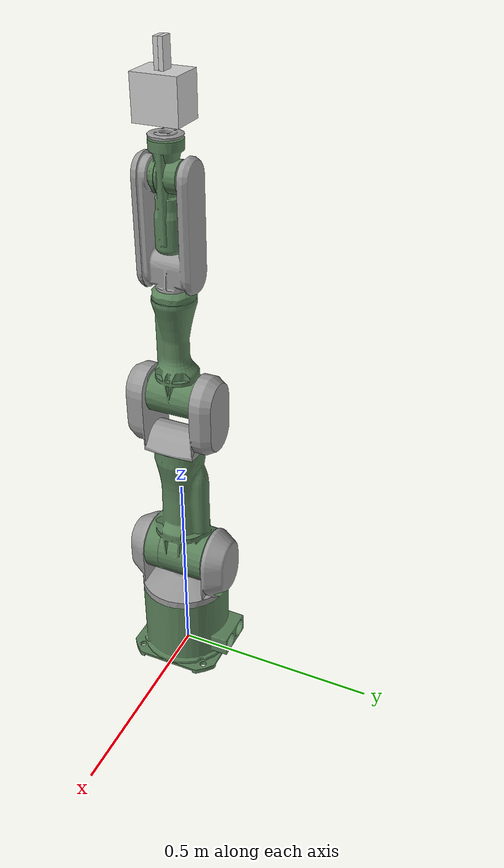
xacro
<?xml version="1.0"?>
<robot name="pa10" xmlns:xacro="http://www.ros.org/wiki/xacro">
  <!-- Import all Gazebo-customization elements, including Gazebo colors -->
  <xacro:include filename="$(find pa10_description)/urdf/pa10.gazebo" />
  <!-- Import Rviz colors -->
  <xacro:include filename="$(find pa10_description)/urdf/materials.xacro" />
  <!-- Import gripper -->
  <xacro:include filename="$(find pg70_description)/urdf/pg70.urdf.xacro" />
  <!-- Used for fixing robot to Gazebo 'base_link' -->
  <link name="world"/>

  <joint name="fixed" type="fixed">
    <parent link="world"/>
    <child link="link0"/>
    <origin rpy="0 0 0" xyz="0 0 0"/>
  </joint>

  <link name="link0">
    <visual>
      <origin xyz="0 0 0" rpy="0 -0 0"/>
      <geometry>
        <mesh filename="package://pa10_description/meshes/pa10/visual/link0_mesh.stl" scale="1 1 1" />
      </geometry>
      <material name="cyan" />
    </visual>
    <collision>
      <origin xyz="0 0 0" rpy="0 -0 0"/>
      <geometry>
        <mesh filename="package://pa10_description/meshes/pa10/collision/link0_mesh.stl" scale="1 1 1" />
      </geometry>
    </collision>
    <inertial>
      <mass value="1" />
      <origin xyz="0 0 0" rpy="0 -0 0"/>
      <inertia ixx="1" ixy="0" ixz="0" iyy="1" iyz="0" izz="1"/>
    </inertial>
  </link>
  <link name="link1">
    <visual>
      <origin xyz="0 0 -0.315" rpy="0 -0 0"/>
      <geometry>
        <mesh filename="package://pa10_description/meshes/pa10/visual/link1_mesh.stl" scale="1 1 1" />
      </geometry>
      <material name="grey" />
    </visual>
    <collision>
      <origin xyz="0 0 -0.315" rpy="0 -0 0"/>
      <geometry>
        <mesh filename="package://pa10_description/meshes/pa10/collision/link1_mesh.stl" scale="1 1 1" />
      </geometry>
    </collision>
    <inertial>
      <mass value="1" />
      <origin xyz="0 0 0" rpy="0 -0 0"/>
      <inertia ixx="1" ixy="0" ixz="0" iyy="1" iyz="0" izz="1"/>
    </inertial>
  </link>
  <link name="link2">
    <visual>
      <origin xyz="0 0 -0.315" rpy="0 -0 0"/>
      <geometry>
        <mesh filename="package://pa10_description/meshes/pa10/visual/link2_mesh.stl" scale="1 1 1" />
      </geometry>
      <material name="cyan" />
    </visual>
    <collision>
      <origin xyz="0 0 -0.315" rpy="0 -0 0"/>
      <geometry>
        <mesh filename="package://pa10_description/meshes/pa10/collision/link2_mesh.stl" scale="1 1 1" />
      </geometry>
    </collision>
    <inertial>
      <mass value="1" />
      <origin xyz="0 0 0" rpy="0 -0 0"/>
      <inertia ixx="1" ixy="0" ixz="0" iyy="1" iyz="0" izz="1"/>
    </inertial>
  </link>
  <link name="link3">
    <visual>
      <origin xyz="0 0 -0.315" rpy="0 -0 0"/>
      <geometry>
        <mesh filename="package://pa10_description/meshes/pa10/visual/link3_mesh.stl" scale="1 1 1" />
      </geometry>
      <material name="grey" />
    </visual>
    <collision>
      <origin xyz="0 0 -0.315" rpy="0 -0 0"/>
      <geometry>
        <mesh filename="package://pa10_description/meshes/pa10/collision/link3_mesh.stl" scale="1 1 1" />
      </geometry>
    </collision>
    <inertial>
      <mass value="1" />
      <origin xyz="0 0 0" rpy="0 -0 0"/>
      <inertia ixx="1" ixy="0" ixz="0" iyy="1" iyz="0" izz="1"/>
    </inertial>
  </link>
  <link name="link4">
    <visual>
      <origin xyz="0 0 -0.765" rpy="0 -0 0"/>
      <geometry>
        <mesh filename="package://pa10_description/meshes/pa10/visual/link4_mesh.stl" scale="1 1 1" />
      </geometry>
      <material name="cyan" />
    </visual>
    <collision>
      <origin xyz="0 0 -0.765" rpy="0 -0 0"/>
      <geometry>
        <mesh filename="package://pa10_description/meshes/pa10/collision/link4_mesh.stl" scale="1 1 1" />
      </geometry>
    </collision>
    <inertial>
      <mass value="1" />
      <origin xyz="0 0 0" rpy="0 -0 0"/>
      <inertia ixx="1" ixy="0" ixz="0" iyy="1" iyz="0" izz="1"/>
    </inertial>
  </link>
  <link name="link5">
    <visual>
      <origin xyz="0 0 -0.765" rpy="0 -0 0"/>
      <geometry>
        <mesh filename="package://pa10_description/meshes/pa10/visual/link5_mesh.stl" scale="1 1 1" />
      </geometry>
      <material name="grey" />
    </visual>
    <collision>
      <origin xyz="0 0 -0.765" rpy="0 -0 0"/>
      <geometry>
        <mesh filename="package://pa10_description/meshes/pa10/collision/link5_mesh.stl" scale="1 1 1" />
      </geometry>
    </collision>
    <inertial>
      <mass value="1" />
      <origin xyz="0 0 0" rpy="0 -0 0"/>
      <inertia ixx="1" ixy="0" ixz="0" iyy="1" iyz="0" izz="1"/>
    </inertial>
  </link>
  <link name="link6">
    <visual>
      <origin xyz="0 0 -1.265" rpy="0 -0 0"/>
      <geometry>
        <mesh filename="package://pa10_description/meshes/pa10/visual/link6_mesh.stl" scale="1 1 1" />
      </geometry>
      <material name="cyan" />
    </visual>
    <collision>
      <origin xyz="0 0 -1.265" rpy="0 -0 0"/>
      <geometry>
        <mesh filename="package://pa10_description/meshes/pa10/collision/link6_mesh.stl" scale="1 1 1" />
      </geometry>
    </collision>
    <inertial>
      <mass value="1" />
      <origin xyz="0 0 0" rpy="0 -0 0"/>
      <inertia ixx="1" ixy="0" ixz="0" iyy="1" iyz="0" izz="1"/>
    </inertial>
  </link>
  <link name="link7">
    <visual>
      <origin xyz="0 0 1.35" rpy="0 -0 0"/>
      <geometry>
        <mesh filename="package://pa10_description/meshes/pa10/visual/link7_mesh.stl" scale="1 1 1" />
      </geometry>
      <material name="grey" />
    </visual>
    <collision>
      <origin xyz="0 0 1.35" rpy="0 -0 0"/>
      <geometry>
        <mesh filename="package://pa10_description/meshes/pa10/collision/link7_mesh.stl" scale="1 1 1" />
      </geometry>
    </collision>
    <inertial>
      <mass value="1" />
      <origin xyz="0 0 2.22045e-16" rpy="0 -0 0"/>
      <inertia ixx="1" ixy="0" ixz="0" iyy="1" iyz="0" izz="1"/>
    </inertial>
  </link>
  <joint name="joint_1" type="revolute">
    <parent link="link0"/>
    <child  link="link1"/>
    <origin xyz="0 0 0.315" rpy="0 -0 0 "/>
    <axis   xyz="0 0 1"/>
    <limit lower="-3.08923" upper="3.08923" effort="100000" velocity="50" />
    <dynamics damping="0.2" friction="0" />
  </joint>
  <joint name="joint_2" type="revolute">
    <parent link="link1"/>
    <child  link="link2"/>
    <origin xyz="0 0 0" rpy="0 -0 0 "/>
    <axis   xyz="0 1 0"/>
    <limit lower="-1.58825" upper="1.58825" effort="100000" velocity="50" />
    <dynamics damping="0.2" friction="0" />
  </joint>
  <joint name="joint_3" type="revolute">
    <parent link="link2"/>
    <child  link="link3"/>
    <origin xyz="0 0 0" rpy="0 -0 0 "/>
    <axis   xyz="0 0 1"/>
    <limit lower="-3.03687" upper="3.03687" effort="100000" velocity="50" />
    <dynamics damping="0.2" friction="0" />
  </joint>
  <joint name="joint_4" type="revolute">
    <parent link="link3"/>
    <child  link="link4"/>
    <origin xyz="0 0 0.450" rpy="0 -0 0 "/>
    <axis   xyz="0 1 0"/>
    <limit lower="-2.3911" upper="2.3911" effort="100000" velocity="50" />
    <dynamics damping="0.2" friction="0" />
  </joint>
  <joint name="joint_5" type="revolute">
    <parent link="link4"/>
    <child  link="link5"/>
    <origin xyz="0 0 0" rpy="0 -0 0 "/>
    <axis   xyz="0 0 1"/>
    <limit lower="-4.45059" upper="4.45059" effort="100000" velocity="50" />
    <dynamics damping="0.2" friction="0" />
  </joint>
  <joint name="joint_6" type="revolute">
    <parent link="link5"/>
    <child  link="link6"/>
    <origin xyz="0 0 0.5" rpy="0 -0 0 "/>
    <axis   xyz="0 1 0"/>
    <limit lower="-2.87979" upper="2.87979" effort="100000" velocity="50" />
    <dynamics damping="0.2" friction="0" />
  </joint>
  <joint name="joint_7" type="continuous">
    <parent link="link6"/>
    <child  link="link7"/>
    <origin xyz="0 0 0.085" rpy="0 -0 0 "/>
    <axis   xyz="0 0 1"/>
    <limit lower="-3.14159" upper="3.14159" effort="100000" velocity="50" />
    <dynamics damping="0.2" friction="0" />
  </joint>

  <!-- gripper -->
  <xacro:schunk_pg70 name="gripper" parent="link7">
      <origin xyz="0 0 0.02" rpy="0 0 0" />
  </xacro:schunk_pg70>

  <transmission name="trans1">
    <type>transmission_interface/SimpleTransmission</type>
    <joint name="joint_1">
      <hardwareInterface>PositionJointInterface</hardwareInterface>
    </joint>
    <actuator name="motor1">
       <hardwareInterface>PositionJointInterface</hardwareInterface>
      <mechanicalReduction>1</mechanicalReduction>
    </actuator>
  </transmission>
  <transmission name="trans2">
    <type>transmission_interface/SimpleTransmission</type>
    <joint name="joint_2">
      <hardwareInterface>PositionJointInterface</hardwareInterface>
    </joint>
    <actuator name="motor2">
       <hardwareInterface>PositionJointInterface</hardwareInterface>
      <mechanicalReduction>1</mechanicalReduction>
    </actuator>
  </transmission>
  <transmission name="trans3">
    <type>transmission_interface/SimpleTransmission</type>
    <joint name="joint_3">
      <hardwareInterface>PositionJointInterface</hardwareInterface>
    </joint>
    <actuator name="motor3">
       <hardwareInterface>PositionJointInterface</hardwareInterface>
      <mechanicalReduction>1</mechanicalReduction>
    </actuator>
  </transmission>
  <transmission name="trans4">
    <type>transmission_interface/SimpleTransmission</type>
    <joint name="joint_4">
      <hardwareInterface>PositionJointInterface</hardwareInterface>
    </joint>
    <actuator name="motor4">
       <hardwareInterface>PositionJointInterface</hardwareInterface>
      <mechanicalReduction>1</mechanicalReduction>
    </actuator>
  </transmission>
  <transmission name="trans5">
    <type>transmission_interface/SimpleTransmission</type>
    <joint name="joint_5">
      <hardwareInterface>PositionJointInterface</hardwareInterface>
    </joint>
    <actuator name="motor5">
       <hardwareInterface>PositionJointInterface</hardwareInterface>
      <mechanicalReduction>1</mechanicalReduction>
    </actuator>
  </transmission>
  <transmission name="trans6">
    <type>transmission_interface/SimpleTransmission</type>
    <joint name="joint_6">
      <hardwareInterface>PositionJointInterface</hardwareInterface>
    </joint>
    <actuator name="motor6">
       <hardwareInterface>PositionJointInterface</hardwareInterface>
      <mechanicalReduction>1</mechanicalReduction>
    </actuator>
  </transmission>
  <transmission name="trans7">
    <type>transmission_interface/SimpleTransmission</type>
    <joint name="joint_7">
      <hardwareInterface>PositionJointInterface</hardwareInterface>
    </joint>
    <actuator name="motor7">
       <hardwareInterface>PositionJointInterface</hardwareInterface>
      <mechanicalReduction>1</mechanicalReduction>
    </actuator>
  </transmission>

  <gazebo>
    <plugin name="gazebo_ros_control" filename="libgazebo_ros_control.so">
      <robotNamespace>/pa10</robotNamespace>
    </plugin>
  </gazebo>

</robot>

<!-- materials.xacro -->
<robot>

  <material name="cyan">
    <color rgba="0.35 0.5 0.35 1"/>
  </material>

  <material name="grey">
    <color rgba=".6 .6 .6 1"/>
  </material>

</robot>

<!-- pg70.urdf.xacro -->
<robot xmlns:xacro="http://www.ros.org/wiki/xacro">

  <xacro:include filename="$(find pg70_description)/urdf/materials.urdf.xacro" />
  <xacro:include filename="$(find pg70_description)/urdf/pg70.gazebo.xacro" />
  <xacro:include filename="$(find pg70_description)/urdf/pg70.transmission.xacro" />

  <xacro:macro name="schunk_pg70" params="parent name *origin">

    <!-- joint between arm_7_link and pg70_palm_link -->
    <joint name="${name}_palm_joint" type="fixed" >
      <insert_block name="origin" />
      <parent link="${parent}" />
      <child link="${name}_palm_link" />
    </joint>

    <link name="${name}_palm_link">
      <inertial>
        <origin xyz="0 0 0" rpy="0 0 0"/>
        <mass value="1.0"/>
        <inertia ixx="0.01" ixy="0" ixz="0" iyy="0.01" iyz="0" izz="0.01" />
      </inertial>

      <visual>
        <origin xyz="0 0 0.0465" rpy="0 0 0" />
        <geometry>
          <box size="0.08 0.10 0.093"/>
        </geometry>
        <material name="Schunk/LightGrey" />
      </visual>

      <collision>
        <origin xyz="0 0 0.0465" rpy="0 0 0" />
        <geometry>
          <box size="0.075 0.095 0.085"/>
        </geometry>
      </collision>
    </link>

    <!-- finger1 -->
    <!-- joint between pg70_palm_link and pg70_finger_1_link -->
    <joint name="${name}_finger" type="prismatic">
      <origin xyz="0.0 0.005 0.093" rpy="0 0 0" />
      <parent link="${name}_palm_link"/>
      <child link="${name}_finger_1_link"/>
      <axis xyz="0 1 0" />
      <dynamics damping="1" />
      <limit effort="100" lower="0" upper="0.034" velocity="5"/>
    </joint>

    <link name="${name}_finger_1_link">
      <inertial>
        <origin xyz="0 0 0" rpy="0 0 0"/>
        <mass value="0.1"/>
        <inertia ixx="0.01" ixy="0" ixz="0" iyy="0.01" iyz="0" izz="0.01" />
      </inertial>

      <visual>
        <origin xyz="0 0 0.03" rpy="0 0 0" />
        <geometry>
          <box size="0.03 0.01 0.060"/>
        </geometry>
        <material name="Schunk/LightGrey" />
      </visual>

      <collision>
        <origin xyz="0 0 0.03" rpy="0 0 0" />
        <geometry>
          <box size="0.025 0.005 0.055"/>
        </geometry>
      </collision>
    </link>

    <!-- finger2 -->
    <!-- joint between pg70_palm_link and pg70_finger_2_link -->
    <joint name="${name}_finger_mimic_joint" type="prismatic">
      <mimic joint="${name}_finger" multiplier="1" offset="0"/>
      <origin xyz="0.0 -0.005 0.093" rpy="0 0 3.14" />
      <parent link="${name}_palm_link"/>
      <child link="${name}_finger_2_link"/>
      <axis xyz="0 1 0" />
      <dynamics damping="1" />
      <limit effort="100" lower="0" upper="0.034" velocity="5"/>
    </joint>

    <link name="${name}_finger_2_link">
      <inertial>
        <origin xyz="0 0 0" rpy="0 0 0"/>
        <mass value="0.1"/>
        <inertia ixx="0.01" ixy="0" ixz="0" iyy="0.01" iyz="0" izz="0.01" />
      </inertial>

      <visual>
        <origin xyz="0 0 0.03" rpy="0 0 0" />
        <geometry>
          <box size="0.03 0.01 0.059"/>
        </geometry>
        <material name="Schunk/LightGrey" />
      </visual>

      <collision>
        <origin xyz="0 0 0.03" rpy="0 0 0" />
        <geometry>
          <box size="0.025 0.005 0.055"/>
        </geometry>
      </collision>
    </link>

    <!-- extensions -->
    <xacro:schunk_pg70_gazebo name="${name}" />
    <xacro:schunk_pg70_transmission name="${name}" />

  </xacro:macro>

</robot>
